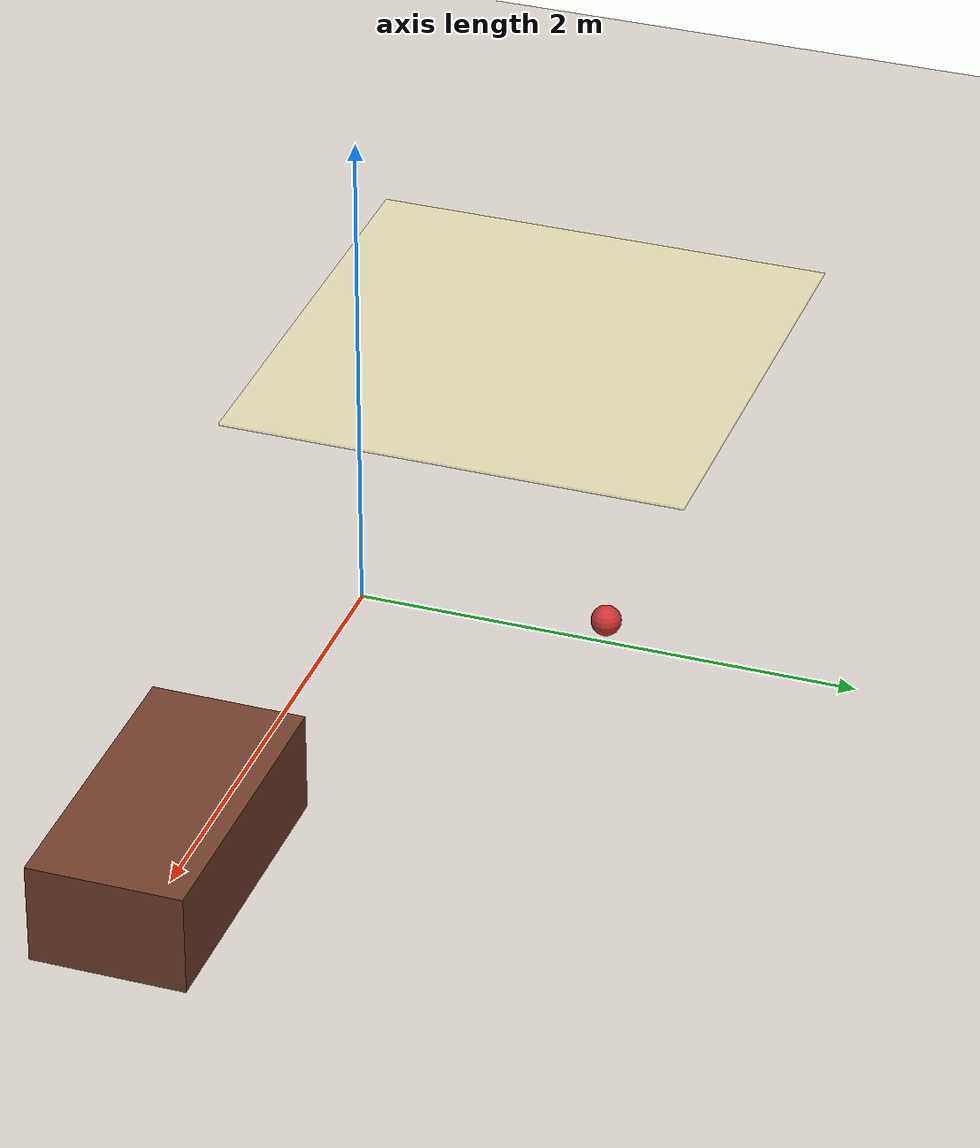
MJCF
<mujoco model="living_room_v0">

  <option timestep="0.002" gravity="0 0 -9.81" integrator="implicitfast"/>

  <visual>
    <map znear="0.01" zfar="50"/>
    <quality shadowsize="2048"/>
  </visual>

  <asset>
    <material name="floor_mat"  rgba="0.85 0.83 0.80 1"/>
    <material name="couch_mat"  rgba="0.45 0.25 0.18 1"/>
    <material name="ball_mat"   rgba="0.80 0.20 0.20 1"/>
    <material name="window_mat" rgba="1.00 0.95 0.55 0.35"/>
  </asset>

  <worldbody>
    <light name="ceiling" pos="0 0 3" dir="0 0 -1" diffuse="0.7 0.7 0.7"/>

    <!-- Floor. 10 m x 10 m, plenty of room to walk. -->
    <geom name="floor"
          type="plane"
          size="5 5 0.1"
          material="floor_mat"
          contype="1" conaffinity="1"/>

    <!-- Couch: low solid box, the cat can jump onto it.
         x = +2 m, y = 0, height = 0.40 m, width 1.2 m x 0.6 m.
         Semantic flags applied in scene_state.py: {elevated, soft}. -->
    <body name="couch" pos="2.0 0.0 0.20">
      <geom name="couch_geom"
            type="box"
            size="0.6 0.3 0.20"
            material="couch_mat"
            contype="1" conaffinity="1"
            friction="0.9 0.005 0.0001"/>
    </body>

    <!-- Ball: free-floating, lightweight, kickable.
         Spawned at y = +1 m so it's not on top of the cat at reset.
         Semantic flags: {play_target}. -->
    <body name="ball" pos="0.0 1.0 0.10">
      <joint name="ball_joint" type="free"/>
      <geom name="ball_geom"
            type="sphere"
            size="0.06"
            material="ball_mat"
            contype="1" conaffinity="1"
            density="60"
            friction="0.4 0.005 0.0001"/>
    </body>

    <!-- Window region: a flat tagged site on the floor at x = -2.
         No collision geometry, just a region the comfort reward checks
         distance-to. Semantic flags: {warm}. -->
    <site name="window_region"
          pos="-2.0 0.0 0.01"
          size="1.0 1.0 0.005"
          type="box"
          material="window_mat"
          group="1"/>
  </worldbody>

</mujoco>
